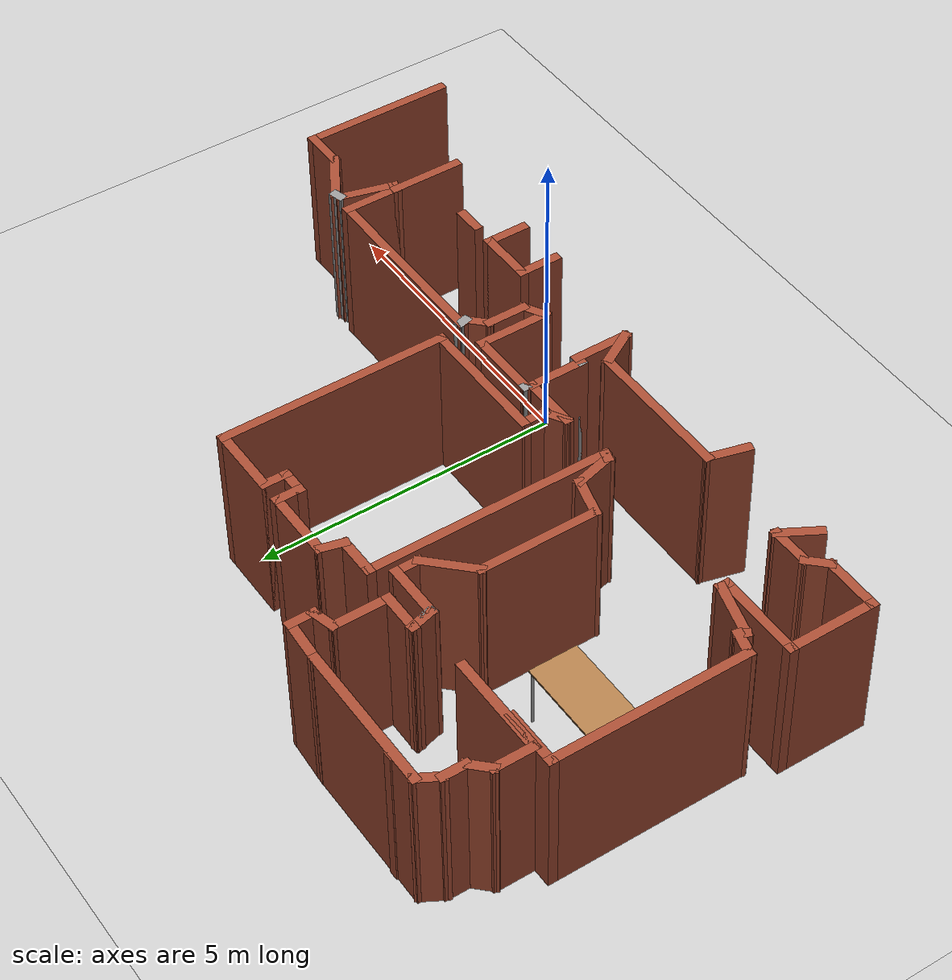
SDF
<sdf version="1.7">
 <world name="default">
  <model name="ground_plane">
   <static>1</static>
   <link name="link">
    <collision name="collision">
     <geometry><plane><normal>0 0 1</normal><size>100 100</size></plane></geometry>
     <surface>
      <contact><collide_bitmask>65535</collide_bitmask></contact>
      <friction><ode><mu>100</mu><mu2>50</mu2></ode></friction>
     </surface>
    </collision>
    <visual name="visual">
     <cast_shadows>0</cast_shadows>
     <geometry><plane><normal>0 0 1</normal><size>100 100</size></plane></geometry>
     <material>
      <script><uri>file://media/materials/scripts/gazebo.material</uri><name>Gazebo/Grey</name></script>
     </material>
    </visual>
   </link>
  </model>
  <model name="map_14">
   <pose>-1.02181 -0.3828 0 0 -0 0</pose>
   <link name="Wall_1">
    <collision name="Wall_1_Collision">
     <geometry><box><size>0.15 0.15 2.5</size></box></geometry>
     <pose>0 0 1.25 0 -0 0</pose>
    </collision>
    <visual name="Wall_1_Visual">
     <pose>0 0 1.25 0 -0 0</pose>
     <geometry><box><size>0.15 0.15 2.5</size></box></geometry>
     <material>
      <script><uri>file://media/materials/scripts/gazebo.material</uri><name>Gazebo/Bricks</name></script>
      <ambient>1 1 1 1</ambient>
     </material>
     <meta><layer>0</layer></meta>
    </visual>
    <pose>-4.77548 6.74677 0 0 -0 0</pose>
   </link>
   <link name="Wall_10">
    <collision name="Wall_10_Collision">
     <geometry><box><size>1.75 0.15 2.5</size></box></geometry>
     <pose>0 0 1.25 0 -0 0</pose>
    </collision>
    <visual name="Wall_10_Visual">
     <pose>0 0 1.25 0 -0 0</pose>
     <geometry><box><size>1.75 0.15 2.5</size></box></geometry>
     <material>
      <script><uri>file://media/materials/scripts/gazebo.material</uri><name>Gazebo/Bricks</name></script>
      <ambient>1 1 1 1</ambient>
     </material>
     <meta><layer>0</layer></meta>
    </visual>
    <pose>-4.87484 5.22304 0 0 -0 0</pose>
   </link>
   <link name="Wall_101">
    <collision name="Wall_101_Collision">
     <geometry><box><size>1.25 0.15 2.5</size></box></geometry>
     <pose>0 0 1.25 0 -0 0</pose>
    </collision>
    <visual name="Wall_101_Visual">
     <pose>0 0 1.25 0 -0 0</pose>
     <geometry><box><size>1.25 0.15 2.5</size></box></geometry>
     <material>
      <script><uri>file://media/materials/scripts/gazebo.material</uri><name>Gazebo/Bricks</name></script>
      <ambient>1 1 1 1</ambient>
     </material>
     <meta><layer>0</layer></meta>
    </visual>
    <pose>0.272904 1.65524 0 0 -0 3.14159</pose>
   </link>
   <link name="Wall_102">
    <collision name="Wall_102_Collision">
     <geometry><box><size>0.25 0.15 2.5</size></box></geometry>
     <pose>0 0 1.25 0 -0 0</pose>
    </collision>
    <visual name="Wall_102_Visual">
     <pose>0 0 1.25 0 -0 0</pose>
     <geometry><box><size>0.25 0.15 2.5</size></box></geometry>
     <material>
      <script><uri>file://media/materials/scripts/gazebo.material</uri><name>Gazebo/Bricks</name></script>
      <ambient>1 1 1 1</ambient>
     </material>
     <meta><layer>0</layer></meta>
    </visual>
    <pose>-0.290037 1.60695 0 0 -0 -1.8326</pose>
   </link>
   <link name="Wall_103">
    <collision name="Wall_103_Collision">
     <geometry><box><size>1 0.15 2.5</size></box></geometry>
     <pose>0 0 1.25 0 -0 0</pose>
    </collision>
    <visual name="Wall_103_Visual">
     <pose>0 0 1.25 0 -0 0</pose>
     <geometry><box><size>1 0.15 2.5</size></box></geometry>
     <material>
      <script><uri>file://media/materials/scripts/gazebo.material</uri><name>Gazebo/Bricks</name></script>
      <ambient>1 1 1 1</ambient>
     </material>
     <meta><layer>0</layer></meta>
    </visual>
    <pose>-0.727978 1.55865 0 0 -0 3.14159</pose>
   </link>
   <link name="Wall_104">
    <collision name="Wall_104_Collision">
     <geometry><box><size>0.5 0.15 2.5</size></box></geometry>
     <pose>0 0 1.25 0 -0 0</pose>
    </collision>
    <visual name="Wall_104_Visual">
     <pose>0 0 1.25 0 -0 0</pose>
     <geometry><box><size>0.5 0.15 2.5</size></box></geometry>
     <material>
      <script><uri>file://media/materials/scripts/gazebo.material</uri><name>Gazebo/Bricks</name></script>
      <ambient>1 1 1 1</ambient>
     </material>
     <meta><layer>0</layer></meta>
    </visual>
    <pose>-1.00142 1.64615 0 0 -0 0.523599</pose>
   </link>
   <link name="Wall_105">
    <collision name="Wall_105_Collision">
     <geometry><box><size>0.5 0.15 2.5</size></box></geometry>
     <pose>0 0 1.25 0 -0 0</pose>
    </collision>
    <visual name="Wall_105_Visual">
     <pose>0 0 1.25 0 -0 0</pose>
     <geometry><box><size>0.5 0.15 2.5</size></box></geometry>
     <material>
      <script><uri>file://media/materials/scripts/gazebo.material</uri><name>Gazebo/Bricks</name></script>
      <ambient>1 1 1 1</ambient>
     </material>
     <meta><layer>0</layer></meta>
    </visual>
    <pose>-0.849869 1.90865 0 0 -0 1.5708</pose>
   </link>
   <link name="Wall_106">
    <collision name="Wall_106_Collision">
     <geometry><box><size>2.25 0.15 2.5</size></box></geometry>
     <pose>0 0 1.25 0 -0 0</pose>
    </collision>
    <visual name="Wall_106_Visual">
     <pose>0 0 1.25 0 -0 0</pose>
     <geometry><box><size>2.25 0.15 2.5</size></box></geometry>
     <material>
      <script><uri>file://media/materials/scripts/gazebo.material</uri><name>Gazebo/Bricks</name></script>
      <ambient>1 1 1 1</ambient>
     </material>
     <meta><layer>0</layer></meta>
    </visual>
    <pose>0.200131 2.08365 0 0 -0 0</pose>
   </link>
   <link name="Wall_107">
    <collision name="Wall_107_Collision">
     <geometry><box><size>3.75 0.15 2.5</size></box></geometry>
     <pose>0 0 1.25 0 -0 0</pose>
    </collision>
    <visual name="Wall_107_Visual">
     <pose>0 0 1.25 0 -0 0</pose>
     <geometry><box><size>3.75 0.15 2.5</size></box></geometry>
     <material>
      <script><uri>file://media/materials/scripts/gazebo.material</uri><name>Gazebo/Bricks</name></script>
      <ambient>1 1 1 1</ambient>
     </material>
     <meta><layer>0</layer></meta>
    </visual>
    <pose>1.25013 3.88365 0 0 -0 1.5708</pose>
   </link>
   <link name="Wall_108">
    <collision name="Wall_108_Collision">
     <geometry><box><size>1.25 0.15 2.5</size></box></geometry>
     <pose>0 0 1.25 0 -0 0</pose>
    </collision>
    <visual name="Wall_108_Visual">
     <pose>0 0 1.25 0 -0 0</pose>
     <geometry><box><size>1.25 0.15 2.5</size></box></geometry>
     <material>
      <script><uri>file://media/materials/scripts/gazebo.material</uri><name>Gazebo/Bricks</name></script>
      <ambient>1 1 1 1</ambient>
     </material>
     <meta><layer>0</layer></meta>
    </visual>
    <pose>0.700131 5.68365 0 0 -0 3.14159</pose>
   </link>
   <link name="Wall_109">
    <collision name="Wall_109_Collision">
     <geometry><box><size>0.5 0.15 2.5</size></box></geometry>
     <pose>0 0 1.25 0 -0 0</pose>
    </collision>
    <visual name="Wall_109_Visual">
     <pose>0 0 1.25 0 -0 0</pose>
     <geometry><box><size>0.5 0.15 2.5</size></box></geometry>
     <material>
      <script><uri>file://media/materials/scripts/gazebo.material</uri><name>Gazebo/Bricks</name></script>
      <ambient>1 1 1 1</ambient>
     </material>
     <meta><layer>0</layer></meta>
    </visual>
    <pose>0.150131 5.50865 0 0 -0 -1.5708</pose>
   </link>
   <link name="Wall_110">
    <collision name="Wall_110_Collision">
     <geometry><box><size>0.5 0.15 2.5</size></box></geometry>
     <pose>0 0 1.25 0 -0 0</pose>
    </collision>
    <visual name="Wall_110_Visual">
     <pose>0 0 1.25 0 -0 0</pose>
     <geometry><box><size>0.5 0.15 2.5</size></box></geometry>
     <material>
      <script><uri>file://media/materials/scripts/gazebo.material</uri><name>Gazebo/Bricks</name></script>
      <ambient>1 1 1 1</ambient>
     </material>
     <meta><layer>0</layer></meta>
    </visual>
    <pose>-0.024869 5.33365 0 0 -0 3.14159</pose>
   </link>
   <link name="Wall_111">
    <collision name="Wall_111_Collision">
     <geometry><box><size>0.5 0.15 2.5</size></box></geometry>
     <pose>0 0 1.25 0 -0 0</pose>
    </collision>
    <visual name="Wall_111_Visual">
     <pose>0 0 1.25 0 -0 0</pose>
     <geometry><box><size>0.5 0.15 2.5</size></box></geometry>
     <material>
      <script><uri>file://media/materials/scripts/gazebo.material</uri><name>Gazebo/Bricks</name></script>
      <ambient>1 1 1 1</ambient>
     </material>
     <meta><layer>0</layer></meta>
    </visual>
    <pose>-0.199869 5.50865 0 0 -0 1.5708</pose>
   </link>
   <link name="Wall_112">
    <collision name="Wall_112_Collision">
     <geometry><box><size>1.25 0.15 2.5</size></box></geometry>
     <pose>0 0 1.25 0 -0 0</pose>
    </collision>
    <visual name="Wall_112_Visual">
     <pose>0 0 1.25 0 -0 0</pose>
     <geometry><box><size>1.25 0.15 2.5</size></box></geometry>
     <material>
      <script><uri>file://media/materials/scripts/gazebo.material</uri><name>Gazebo/Bricks</name></script>
      <ambient>1 1 1 1</ambient>
     </material>
     <meta><layer>0</layer></meta>
    </visual>
    <pose>-0.749869 5.68365 0 0 -0 3.14159</pose>
   </link>
   <link name="Wall_113">
    <collision name="Wall_113_Collision">
     <geometry><box><size>0.5 0.15 2.5</size></box></geometry>
     <pose>0 0 1.25 0 -0 0</pose>
    </collision>
    <visual name="Wall_113_Visual">
     <pose>0 0 1.25 0 -0 0</pose>
     <geometry><box><size>0.5 0.15 2.5</size></box></geometry>
     <material>
      <script><uri>file://media/materials/scripts/gazebo.material</uri><name>Gazebo/Bricks</name></script>
      <ambient>1 1 1 1</ambient>
     </material>
     <meta><layer>0</layer></meta>
    </visual>
    <pose>-1.34516 5.51461 0 0 -0 -1.8326</pose>
   </link>
   <link name="Wall_114">
    <collision name="Wall_114_Collision">
     <geometry><box><size>0.75 0.15 2.5</size></box></geometry>
     <pose>0 0 1.25 0 -0 0</pose>
    </collision>
    <visual name="Wall_114_Visual">
     <pose>0 0 1.25 0 -0 0</pose>
     <geometry><box><size>0.75 0.15 2.5</size></box></geometry>
     <material>
      <script><uri>file://media/materials/scripts/gazebo.material</uri><name>Gazebo/Bricks</name></script>
      <ambient>1 1 1 1</ambient>
     </material>
     <meta><layer>0</layer></meta>
    </visual>
    <pose>-1.69046 5.34558 0 0 -0 3.14159</pose>
   </link>
   <link name="Wall_115">
    <collision name="Wall_115_Collision">
     <geometry><box><size>4 0.15 2.5</size></box></geometry>
     <pose>0 0 1.25 0 -0 0</pose>
    </collision>
    <visual name="Wall_115_Visual">
     <pose>0 0 1.25 0 -0 0</pose>
     <geometry><box><size>4 0.15 2.5</size></box></geometry>
     <material>
      <script><uri>file://media/materials/scripts/gazebo.material</uri><name>Gazebo/Bricks</name></script>
      <ambient>1 1 1 1</ambient>
     </material>
     <meta><layer>0</layer></meta>
    </visual>
    <pose>-1.99046 3.42058 0 0 -0 -1.5708</pose>
   </link>
   <link name="Wall_116">
    <collision name="Wall_116_Collision">
     <geometry><box><size>0.25 0.15 2.5</size></box></geometry>
     <pose>0 0 1.25 0 -0 0</pose>
    </collision>
    <visual name="Wall_116_Visual">
     <pose>0 0 1.25 0 -0 0</pose>
     <geometry><box><size>0.25 0.15 2.5</size></box></geometry>
     <material>
      <script><uri>file://media/materials/scripts/gazebo.material</uri><name>Gazebo/Bricks</name></script>
      <ambient>1 1 1 1</ambient>
     </material>
     <meta><layer>0</layer></meta>
    </visual>
    <pose>-2.03875 1.50852 0 0 -0 2.87979</pose>
   </link>
   <link name="Wall_117">
    <collision name="Wall_117_Collision">
     <geometry><box><size>0.75 0.15 2.5</size></box></geometry>
     <pose>0 0 1.25 0 -0 0</pose>
    </collision>
    <visual name="Wall_117_Visual">
     <pose>0 0 1.25 0 -0 0</pose>
     <geometry><box><size>0.75 0.15 2.5</size></box></geometry>
     <material>
      <script><uri>file://media/materials/scripts/gazebo.material</uri><name>Gazebo/Bricks</name></script>
      <ambient>1 1 1 1</ambient>
     </material>
     <meta><layer>0</layer></meta>
    </visual>
    <pose>-2.16469 1.81124 0 0 -0 1.8326</pose>
   </link>
   <link name="Wall_118">
    <collision name="Wall_118_Collision">
     <geometry><box><size>0.75 0.15 2.5</size></box></geometry>
     <pose>0 0 1.25 0 -0 0</pose>
    </collision>
    <visual name="Wall_118_Visual">
     <pose>0 0 1.25 0 -0 0</pose>
     <geometry><box><size>0.75 0.15 2.5</size></box></geometry>
     <material>
      <script><uri>file://media/materials/scripts/gazebo.material</uri><name>Gazebo/Bricks</name></script>
      <ambient>1 1 1 1</ambient>
     </material>
     <meta><layer>0</layer></meta>
    </visual>
    <pose>-2.53212 2.17866 0 0 -0 2.87979</pose>
   </link>
   <link name="Wall_119">
    <collision name="Wall_119_Collision">
     <geometry><box><size>2 0.15 2.5</size></box></geometry>
     <pose>0 0 1.25 0 -0 0</pose>
    </collision>
    <visual name="Wall_119_Visual">
     <pose>0 0 1.25 0 -0 0</pose>
     <geometry><box><size>2 0.15 2.5</size></box></geometry>
     <material>
      <script><uri>file://media/materials/scripts/gazebo.material</uri><name>Gazebo/Bricks</name></script>
      <ambient>1 1 1 1</ambient>
     </material>
     <meta><layer>0</layer></meta>
    </visual>
    <pose>-2.8219 3.18131 0 0 -0 1.5708</pose>
   </link>
   <link name="Wall_12">
    <collision name="Wall_12_Collision">
     <geometry><box><size>1 0.15 2.5</size></box></geometry>
     <pose>0 0 1.25 0 -0 0</pose>
    </collision>
    <visual name="Wall_12_Visual">
     <pose>0 0 1.25 0 -0 0</pose>
     <geometry><box><size>1 0.15 2.5</size></box></geometry>
     <material>
      <script><uri>file://media/materials/scripts/gazebo.material</uri><name>Gazebo/Bricks</name></script>
      <ambient>1 1 1 1</ambient>
     </material>
     <meta><layer>0</layer></meta>
    </visual>
    <pose>-5.54789 5.17389 0 0 -0 3.14159</pose>
   </link>
   <link name="Wall_120">
    <collision name="Wall_120_Collision">
     <geometry><box><size>1 0.15 2.5</size></box></geometry>
     <pose>0 0 1.25 0 -0 0</pose>
    </collision>
    <visual name="Wall_120_Visual">
     <pose>0 0 1.25 0 -0 0</pose>
     <geometry><box><size>1 0.15 2.5</size></box></geometry>
     <material>
      <script><uri>file://media/materials/scripts/gazebo.material</uri><name>Gazebo/Bricks</name></script>
      <ambient>1 1 1 1</ambient>
     </material>
     <meta><layer>0</layer></meta>
    </visual>
    <pose>-2.52137 4.40683 0 0 -0 0.785398</pose>
   </link>
   <link name="Wall_121">
    <collision name="Wall_121_Collision">
     <geometry><box><size>0.5 0.15 2.5</size></box></geometry>
     <pose>0 0 1.25 0 -0 0</pose>
    </collision>
    <visual name="Wall_121_Visual">
     <pose>0 0 1.25 0 -0 0</pose>
     <geometry><box><size>0.5 0.15 2.5</size></box></geometry>
     <material>
      <script><uri>file://media/materials/scripts/gazebo.material</uri><name>Gazebo/Bricks</name></script>
      <ambient>1 1 1 1</ambient>
     </material>
     <meta><layer>0</layer></meta>
    </visual>
    <pose>-2.22085 4.88235 0 0 -0 1.5708</pose>
   </link>
   <link name="Wall_123">
    <collision name="Wall_123_Collision">
     <geometry><box><size>0.25 0.15 2.5</size></box></geometry>
     <pose>0 0 1.25 0 -0 0</pose>
    </collision>
    <visual name="Wall_123_Visual">
     <pose>0 0 1.25 0 -0 0</pose>
     <geometry><box><size>0.25 0.15 2.5</size></box></geometry>
     <material>
      <script><uri>file://media/materials/scripts/gazebo.material</uri><name>Gazebo/Grey</name></script>
      <ambient>1 1 1 1</ambient>
     </material>
     <meta><layer>0</layer></meta>
    </visual>
    <pose>-3.08379 5.10564 0 0 -0 1.8326</pose>
   </link>
   <link name="Wall_126">
    <collision name="Wall_126_Collision">
     <geometry><box><size>0.25 0.15 2.5</size></box></geometry>
     <pose>0 0 1.25 0 -0 0</pose>
    </collision>
    <visual name="Wall_126_Visual">
     <pose>0 0 1.25 0 -0 0</pose>
     <geometry><box><size>0.25 0.15 2.5</size></box></geometry>
     <material>
      <script><uri>file://media/materials/scripts/gazebo.material</uri><name>Gazebo/Grey</name></script>
      <ambient>1 1 1 1</ambient>
     </material>
     <meta><layer>0</layer></meta>
    </visual>
    <pose>-3.08379 5.10564 0 0 -0 1.8326</pose>
   </link>
   <link name="Wall_129">
    <collision name="Wall_129_Collision">
     <geometry><box><size>1 0.15 2.5</size></box></geometry>
     <pose>0 0 1.25 0 -0 0</pose>
    </collision>
    <visual name="Wall_129_Visual">
     <pose>0 0 1.25 0 -0 0</pose>
     <geometry><box><size>1 0.15 2.5</size></box></geometry>
     <material>
      <script><uri>file://media/materials/scripts/gazebo.material</uri><name>Gazebo/Bricks</name></script>
      <ambient>1 1 1 1</ambient>
     </material>
     <meta><layer>0</layer></meta>
    </visual>
    <pose>-2.64585 5.05735 0 0 -0 3.14159</pose>
   </link>
   <link name="Wall_13">
    <collision name="Wall_13_Collision">
     <geometry><box><size>3.25 0.15 2.5</size></box></geometry>
     <pose>0 0 1.25 0 -0 0</pose>
    </collision>
    <visual name="Wall_13_Visual">
     <pose>0 0 1.25 0 -0 0</pose>
     <geometry><box><size>3.25 0.15 2.5</size></box></geometry>
     <material>
      <script><uri>file://media/materials/scripts/gazebo.material</uri><name>Gazebo/Bricks</name></script>
      <ambient>1 1 1 1</ambient>
     </material>
     <meta><layer>0</layer></meta>
    </visual>
    <pose>-5.97289 3.62389 0 0 -0 -1.5708</pose>
   </link>
   <link name="Wall_130">
    <collision name="Wall_130_Collision">
     <geometry><box><size>0.5 0.15 2.5</size></box></geometry>
     <pose>0 0 1.25 0 -0 0</pose>
    </collision>
    <visual name="Wall_130_Visual">
     <pose>0 0 1.25 0 -0 0</pose>
     <geometry><box><size>0.5 0.15 2.5</size></box></geometry>
     <material>
      <script><uri>file://media/materials/scripts/gazebo.material</uri><name>Gazebo/Bricks</name></script>
      <ambient>1 1 1 1</ambient>
     </material>
     <meta><layer>0</layer></meta>
    </visual>
    <pose>-3.11615 5.22638 0 0 -0 1.8326</pose>
   </link>
   <link name="Wall_133">
    <collision name="Wall_133_Collision">
     <geometry><box><size>0.75 0.15 2.5</size></box></geometry>
     <pose>0 0 1.25 0 -0 0</pose>
    </collision>
    <visual name="Wall_133_Visual">
     <pose>0 0 1.25 0 -0 0</pose>
     <geometry><box><size>0.75 0.15 2.5</size></box></geometry>
     <material>
      <script><uri>file://media/materials/scripts/gazebo.material</uri><name>Gazebo/Bricks</name></script>
      <ambient>1 1 1 1</ambient>
     </material>
     <meta><layer>0</layer></meta>
    </visual>
    <pose>-2.86144 5.39542 0 0 -0 0</pose>
   </link>
   <link name="Wall_134">
    <collision name="Wall_134_Collision">
     <geometry><box><size>1 0.15 2.5</size></box></geometry>
     <pose>0 0 1.25 0 -0 0</pose>
    </collision>
    <visual name="Wall_134_Visual">
     <pose>0 0 1.25 0 -0 0</pose>
     <geometry><box><size>1 0.15 2.5</size></box></geometry>
     <material>
      <script><uri>file://media/materials/scripts/gazebo.material</uri><name>Gazebo/Bricks</name></script>
      <ambient>1 1 1 1</ambient>
     </material>
     <meta><layer>0</layer></meta>
    </visual>
    <pose>-2.56144 5.82042 0 0 -0 1.5708</pose>
   </link>
   <link name="Wall_135">
    <collision name="Wall_135_Collision">
     <geometry><box><size>0.5 0.15 2.5</size></box></geometry>
     <pose>0 0 1.25 0 -0 0</pose>
    </collision>
    <visual name="Wall_135_Visual">
     <pose>0 0 1.25 0 -0 0</pose>
     <geometry><box><size>0.5 0.15 2.5</size></box></geometry>
     <material>
      <script><uri>file://media/materials/scripts/gazebo.material</uri><name>Gazebo/Bricks</name></script>
      <ambient>1 1 1 1</ambient>
     </material>
     <meta><layer>0</layer></meta>
    </visual>
    <pose>-2.3924 6.29071 0 0 -0 0.261799</pose>
   </link>
   <link name="Wall_136">
    <collision name="Wall_136_Collision">
     <geometry><box><size>0.5 0.15 2.5</size></box></geometry>
     <pose>0 0 1.25 0 -0 0</pose>
    </collision>
    <visual name="Wall_136_Visual">
     <pose>0 0 1.25 0 -0 0</pose>
     <geometry><box><size>0.5 0.15 2.5</size></box></geometry>
     <material>
      <script><uri>file://media/materials/scripts/gazebo.material</uri><name>Gazebo/Bricks</name></script>
      <ambient>1 1 1 1</ambient>
     </material>
     <meta><layer>0</layer></meta>
    </visual>
    <pose>-2.22337 6.51101 0 0 -0 1.5708</pose>
   </link>
   <link name="Wall_137">
    <collision name="Wall_137_Collision">
     <geometry><box><size>0.830025 0.15 2.5</size></box></geometry>
     <pose>0 0 1.25 0 -0 0</pose>
    </collision>
    <visual name="Wall_137_Visual">
     <pose>0 0 1.25 0 -0 0</pose>
     <geometry><box><size>0.830025 0.15 2.5</size></box></geometry>
     <material>
      <script><uri>file://media/materials/scripts/gazebo.material</uri><name>Gazebo/Bricks</name></script>
      <ambient>1 1 1 1</ambient>
     </material>
     <meta><layer>0</layer></meta>
    </visual>
    <pose>-2.56286 6.70482 0 0 -0 3.08623</pose>
   </link>
   <link name="Wall_14">
    <collision name="Wall_14_Collision">
     <geometry><box><size>0.5 0.15 2.5</size></box></geometry>
     <pose>0 0 1.25 0 -0 0</pose>
    </collision>
    <visual name="Wall_14_Visual">
     <pose>0 0 1.25 0 -0 0</pose>
     <geometry><box><size>0.5 0.15 2.5</size></box></geometry>
     <material>
      <script><uri>file://media/materials/scripts/gazebo.material</uri><name>Gazebo/Bricks</name></script>
      <ambient>1 1 1 1</ambient>
     </material>
     <meta><layer>0</layer></meta>
    </visual>
    <pose>-5.80385 2.0286 0 0 -0 -0.261799</pose>
   </link>
   <link name="Wall_140">
    <collision name="Wall_140_Collision">
     <geometry><box><size>1.25 0.15 2.5</size></box></geometry>
     <pose>0 0 1.25 0 -0 0</pose>
    </collision>
    <visual name="Wall_140_Visual">
     <pose>0 0 1.25 0 -0 0</pose>
     <geometry><box><size>1.25 0.15 2.5</size></box></geometry>
     <material>
      <script><uri>file://media/materials/scripts/gazebo.material</uri><name>Gazebo/Bricks</name></script>
      <ambient>1 1 1 1</ambient>
     </material>
     <meta><layer>0</layer></meta>
    </visual>
    <pose>4.44762 0.274324 0 0 -0 -1.5708</pose>
   </link>
   <link name="Wall_142">
    <collision name="Wall_142_Collision">
     <geometry><box><size>0.75 0.15 2.5</size></box></geometry>
     <pose>0 0 1.25 0 -0 0</pose>
    </collision>
    <visual name="Wall_142_Visual">
     <pose>0 0 1.25 0 -0 0</pose>
     <geometry><box><size>0.75 0.15 2.5</size></box></geometry>
     <material>
      <script><uri>file://media/materials/scripts/gazebo.material</uri><name>Gazebo/Bricks</name></script>
      <ambient>1 1 1 1</ambient>
     </material>
     <meta><layer>0</layer></meta>
    </visual>
    <pose>1.77003 0.016461 0 0 -0 -1.5708</pose>
   </link>
   <link name="Wall_144">
    <collision name="Wall_144_Collision">
     <geometry><box><size>0.75 0.15 2.5</size></box></geometry>
     <pose>0 0 1.25 0 -0 0</pose>
    </collision>
    <visual name="Wall_144_Visual">
     <pose>0 0 1.25 0 -0 0</pose>
     <geometry><box><size>0.75 0.15 2.5</size></box></geometry>
     <material>
      <script><uri>file://media/materials/scripts/gazebo.material</uri><name>Gazebo/Bricks</name></script>
      <ambient>1 1 1 1</ambient>
     </material>
     <meta><layer>0</layer></meta>
    </visual>
    <pose>2.62003 0.016461 0 0 -0 1.5708</pose>
   </link>
   <link name="Wall_145">
    <collision name="Wall_145_Collision">
     <geometry><box><size>1 0.15 2.5</size></box></geometry>
     <pose>0 0 1.25 0 -0 0</pose>
    </collision>
    <visual name="Wall_145_Visual">
     <pose>0 0 1.25 0 -0 0</pose>
     <geometry><box><size>1 0.15 2.5</size></box></geometry>
     <material>
      <script><uri>file://media/materials/scripts/gazebo.material</uri><name>Gazebo/Bricks</name></script>
      <ambient>1 1 1 1</ambient>
     </material>
     <meta><layer>0</layer></meta>
    </visual>
    <pose>2.19503 0.316462 0 0 -0 3.14159</pose>
   </link>
   <link name="Wall_15">
    <collision name="Wall_15_Collision">
     <geometry><box><size>0.25 0.15 2.5</size></box></geometry>
     <pose>0 0 1.25 0 -0 0</pose>
    </collision>
    <visual name="Wall_15_Visual">
     <pose>0 0 1.25 0 -0 0</pose>
     <geometry><box><size>0.25 0.15 2.5</size></box></geometry>
     <material>
      <script><uri>file://media/materials/scripts/gazebo.material</uri><name>Gazebo/Bricks</name></script>
      <ambient>1 1 1 1</ambient>
     </material>
     <meta><layer>0</layer></meta>
    </visual>
    <pose>-5.65981 1.94 0 0 -0 -2.0944</pose>
   </link>
   <link name="Wall_151">
    <collision name="Wall_151_Collision">
     <geometry><box><size>0.5 0.15 2.5</size></box></geometry>
     <pose>0 0 1.25 0 -0 0</pose>
    </collision>
    <visual name="Wall_151_Visual">
     <pose>0 0 1.25 0 -0 0</pose>
     <geometry><box><size>0.5 0.15 2.5</size></box></geometry>
     <material>
      <script><uri>file://media/materials/scripts/gazebo.material</uri><name>Gazebo/Bricks</name></script>
      <ambient>1 1 1 1</ambient>
     </material>
     <meta><layer>0</layer></meta>
    </visual>
    <pose>3.19629 0.295153 0 0 -0 3.14159</pose>
   </link>
   <link name="Wall_153">
    <collision name="Wall_153_Collision">
     <geometry><box><size>1 0.15 2.5</size></box></geometry>
     <pose>0 0 1.25 0 -0 0</pose>
    </collision>
    <visual name="Wall_153_Visual">
     <pose>0 0 1.25 0 -0 0</pose>
     <geometry><box><size>1 0.15 2.5</size></box></geometry>
     <material>
      <script><uri>file://media/materials/scripts/gazebo.material</uri><name>Gazebo/Bricks</name></script>
      <ambient>1 1 1 1</ambient>
     </material>
     <meta><layer>0</layer></meta>
    </visual>
    <pose>-0.302978 1.13365 0 0 -0 -1.5708</pose>
   </link>
   <link name="Wall_154">
    <collision name="Wall_154_Collision">
     <geometry><box><size>0.25 0.15 2.5</size></box></geometry>
     <pose>0 0 1.25 0 -0 0</pose>
    </collision>
    <visual name="Wall_154_Visual">
     <pose>0 0 1.25 0 -0 0</pose>
     <geometry><box><size>0.25 0.15 2.5</size></box></geometry>
     <material>
      <script><uri>file://media/materials/scripts/gazebo.material</uri><name>Gazebo/Grey</name></script>
      <ambient>1 1 1 1</ambient>
     </material>
     <meta><layer>0</layer></meta>
    </visual>
    <pose>-0.252978 0.708652 0 0 -0 0</pose>
   </link>
   <link name="Wall_155">
    <collision name="Wall_155_Collision">
     <geometry><box><size>1 0.15 2.5</size></box></geometry>
     <pose>0 0 1.25 0 -0 0</pose>
    </collision>
    <visual name="Wall_155_Visual">
     <pose>0 0 1.25 0 -0 0</pose>
     <geometry><box><size>1 0.15 2.5</size></box></geometry>
     <material>
      <script><uri>file://media/materials/scripts/gazebo.material</uri><name>Gazebo/Bricks</name></script>
      <ambient>1 1 1 1</ambient>
     </material>
     <meta><layer>0</layer></meta>
    </visual>
    <pose>-0.202978 0.283651 0 0 -0 -1.5708</pose>
   </link>
   <link name="Wall_157">
    <collision name="Wall_157_Collision">
     <geometry><box><size>0.75 0.15 2.5</size></box></geometry>
     <pose>0 0 1.25 0 -0 0</pose>
    </collision>
    <visual name="Wall_157_Visual">
     <pose>0 0 1.25 0 -0 0</pose>
     <geometry><box><size>0.75 0.15 2.5</size></box></geometry>
     <material>
      <script><uri>file://media/materials/scripts/gazebo.material</uri><name>Gazebo/Bricks</name></script>
      <ambient>1 1 1 1</ambient>
     </material>
     <meta><layer>0</layer></meta>
    </visual>
    <pose>-0.352978 0.118459 0 0 -0 2.0944</pose>
   </link>
   <link name="Wall_158">
    <collision name="Wall_158_Collision">
     <geometry><box><size>2.5 0.15 2.5</size></box></geometry>
     <pose>0 0 1.25 0 -0 0</pose>
    </collision>
    <visual name="Wall_158_Visual">
     <pose>0 0 1.25 0 -0 0</pose>
     <geometry><box><size>2.5 0.15 2.5</size></box></geometry>
     <material>
      <script><uri>file://media/materials/scripts/gazebo.material</uri><name>Gazebo/Bricks</name></script>
      <ambient>1 1 1 1</ambient>
     </material>
     <meta><layer>0</layer></meta>
    </visual>
    <pose>-1.67798 0.378267 0 0 -0 3.14159</pose>
   </link>
   <link name="Wall_159">
    <collision name="Wall_159_Collision">
     <geometry><box><size>0.75 0.15 2.5</size></box></geometry>
     <pose>0 0 1.25 0 -0 0</pose>
    </collision>
    <visual name="Wall_159_Visual">
     <pose>0 0 1.25 0 -0 0</pose>
     <geometry><box><size>0.75 0.15 2.5</size></box></geometry>
     <material>
      <script><uri>file://media/materials/scripts/gazebo.material</uri><name>Gazebo/Bricks</name></script>
      <ambient>1 1 1 1</ambient>
     </material>
     <meta><layer>0</layer></meta>
    </visual>
    <pose>-2.93062 0.088489 0 0 -0 -1.8326</pose>
   </link>
   <link name="Wall_16">
    <collision name="Wall_16_Collision">
     <geometry><box><size>1 0.15 2.5</size></box></geometry>
     <pose>0 0 1.25 0 -0 0</pose>
    </collision>
    <visual name="Wall_16_Visual">
     <pose>0 0 1.25 0 -0 0</pose>
     <geometry><box><size>1 0.15 2.5</size></box></geometry>
     <material>
      <script><uri>file://media/materials/scripts/gazebo.material</uri><name>Gazebo/Bricks</name></script>
      <ambient>1 1 1 1</ambient>
     </material>
     <meta><layer>0</layer></meta>
    </visual>
    <pose>-5.2743 1.7867 0 0 -0 -0.261799</pose>
   </link>
   <link name="Wall_17">
    <collision name="Wall_17_Collision">
     <geometry><box><size>0.25 0.15 2.5</size></box></geometry>
     <pose>0 0 1.25 0 -0 0</pose>
    </collision>
    <visual name="Wall_17_Visual">
     <pose>0 0 1.25 0 -0 0</pose>
     <geometry><box><size>0.25 0.15 2.5</size></box></geometry>
     <material>
      <script><uri>file://media/materials/scripts/gazebo.material</uri><name>Gazebo/Bricks</name></script>
      <ambient>1 1 1 1</ambient>
     </material>
     <meta><layer>0</layer></meta>
    </visual>
    <pose>-4.86378 1.6267 0 0 -0 -1.5708</pose>
   </link>
   <link name="Wall_18">
    <collision name="Wall_18_Collision">
     <geometry><box><size>1.5 0.15 2.5</size></box></geometry>
     <pose>0 0 1.25 0 -0 0</pose>
    </collision>
    <visual name="Wall_18_Visual">
     <pose>0 0 1.25 0 -0 0</pose>
     <geometry><box><size>1.5 0.15 2.5</size></box></geometry>
     <material>
      <script><uri>file://media/materials/scripts/gazebo.material</uri><name>Gazebo/Bricks</name></script>
      <ambient>1 1 1 1</ambient>
     </material>
     <meta><layer>0</layer></meta>
    </visual>
    <pose>-5.53878 1.5767 0 0 -0 3.14159</pose>
   </link>
   <link name="Wall_19">
    <collision name="Wall_19_Collision">
     <geometry><box><size>1.5 0.15 2.5</size></box></geometry>
     <pose>0 0 1.25 0 -0 0</pose>
    </collision>
    <visual name="Wall_19_Visual">
     <pose>0 0 1.25 0 -0 0</pose>
     <geometry><box><size>1.5 0.15 2.5</size></box></geometry>
     <material>
      <script><uri>file://media/materials/scripts/gazebo.material</uri><name>Gazebo/Bricks</name></script>
      <ambient>1 1 1 1</ambient>
     </material>
     <meta><layer>0</layer></meta>
    </visual>
    <pose>-6.21378 0.901704 0 0 -0 -1.5708</pose>
   </link>
   <link name="Wall_20">
    <collision name="Wall_20_Collision">
     <geometry><box><size>1 0.15 2.5</size></box></geometry>
     <pose>0 0 1.25 0 -0 0</pose>
    </collision>
    <visual name="Wall_20_Visual">
     <pose>0 0 1.25 0 -0 0</pose>
     <geometry><box><size>1 0.15 2.5</size></box></geometry>
     <material>
      <script><uri>file://media/materials/scripts/gazebo.material</uri><name>Gazebo/Bricks</name></script>
      <ambient>1 1 1 1</ambient>
     </material>
     <meta><layer>0</layer></meta>
    </visual>
    <pose>-5.78878 0.226704 0 0 -0 0</pose>
   </link>
   <link name="Wall_21">
    <collision name="Wall_21_Collision">
     <geometry><box><size>0.5 0.15 2.5</size></box></geometry>
     <pose>0 0 1.25 0 -0 0</pose>
    </collision>
    <visual name="Wall_21_Visual">
     <pose>0 0 1.25 0 -0 0</pose>
     <geometry><box><size>0.5 0.15 2.5</size></box></geometry>
     <material>
      <script><uri>file://media/materials/scripts/gazebo.material</uri><name>Gazebo/Bricks</name></script>
      <ambient>1 1 1 1</ambient>
     </material>
     <meta><layer>0</layer></meta>
    </visual>
    <pose>-5.24003 0.350447 0 0 -0 0.785398</pose>
   </link>
   <link name="Wall_22">
    <collision name="Wall_22_Collision">
     <geometry><box><size>0.75 0.15 2.5</size></box></geometry>
     <pose>0 0 1.25 0 -0 0</pose>
    </collision>
    <visual name="Wall_22_Visual">
     <pose>0 0 1.25 0 -0 0</pose>
     <geometry><box><size>0.75 0.15 2.5</size></box></geometry>
     <material>
      <script><uri>file://media/materials/scripts/gazebo.material</uri><name>Gazebo/Bricks</name></script>
      <ambient>1 1 1 1</ambient>
     </material>
     <meta><layer>0</layer></meta>
    </visual>
    <pose>-4.81629 0.474191 0 0 -0 0</pose>
   </link>
   <link name="Wall_23">
    <collision name="Wall_23_Collision">
     <geometry><box><size>0.75 0.15 2.5</size></box></geometry>
     <pose>0 0 1.25 0 -0 0</pose>
    </collision>
    <visual name="Wall_23_Visual">
     <pose>0 0 1.25 0 -0 0</pose>
     <geometry><box><size>0.75 0.15 2.5</size></box></geometry>
     <material>
      <script><uri>file://media/materials/scripts/gazebo.material</uri><name>Gazebo/Bricks</name></script>
      <ambient>1 1 1 1</ambient>
     </material>
     <meta><layer>0</layer></meta>
    </visual>
    <pose>-4.66629 0.214383 0 0 -0 -2.0944</pose>
   </link>
   <link name="Wall_3">
    <collision name="Wall_3_Collision">
     <geometry><box><size>2.5 0.15 2.5</size></box></geometry>
     <pose>0 0 1.25 0 -0 0</pose>
    </collision>
    <visual name="Wall_3_Visual">
     <pose>0 0 1.25 0 -0 0</pose>
     <geometry><box><size>2.5 0.15 2.5</size></box></geometry>
     <material>
      <script><uri>file://media/materials/scripts/gazebo.material</uri><name>Gazebo/Bricks</name></script>
      <ambient>1 1 1 1</ambient>
     </material>
     <meta><layer>0</layer></meta>
    </visual>
    <pose>-4.07735 6.72364 0 0 -0 3.14159</pose>
   </link>
   <link name="Wall_4">
    <collision name="Wall_4_Collision">
     <geometry><box><size>0.5 0.15 2.5</size></box></geometry>
     <pose>0 0 1.25 0 -0 0</pose>
    </collision>
    <visual name="Wall_4_Visual">
     <pose>0 0 1.25 0 -0 0</pose>
     <geometry><box><size>0.5 0.15 2.5</size></box></geometry>
     <material>
      <script><uri>file://media/materials/scripts/gazebo.material</uri><name>Gazebo/Bricks</name></script>
      <ambient>1 1 1 1</ambient>
     </material>
     <meta><layer>0</layer></meta>
    </visual>
    <pose>-5.33985 6.57209 0 0 -0 -2.0944</pose>
   </link>
   <link name="Wall_5">
    <collision name="Wall_5_Collision">
     <geometry><box><size>0.5 0.15 2.5</size></box></geometry>
     <pose>0 0 1.25 0 -0 0</pose>
    </collision>
    <visual name="Wall_5_Visual">
     <pose>0 0 1.25 0 -0 0</pose>
     <geometry><box><size>0.5 0.15 2.5</size></box></geometry>
     <material>
      <script><uri>file://media/materials/scripts/gazebo.material</uri><name>Gazebo/Bricks</name></script>
      <ambient>1 1 1 1</ambient>
     </material>
     <meta><layer>0</layer></meta>
    </visual>
    <pose>-5.42735 6.24553 0 0 -0 -1.5708</pose>
   </link>
   <link name="Wall_6">
    <collision name="Wall_6_Collision">
     <geometry><box><size>0.5 0.15 2.5</size></box></geometry>
     <pose>0 0 1.25 0 -0 0</pose>
    </collision>
    <visual name="Wall_6_Visual">
     <pose>0 0 1.25 0 -0 0</pose>
     <geometry><box><size>0.5 0.15 2.5</size></box></geometry>
     <material>
      <script><uri>file://media/materials/scripts/gazebo.material</uri><name>Gazebo/Bricks</name></script>
      <ambient>1 1 1 1</ambient>
     </material>
     <meta><layer>0</layer></meta>
    </visual>
    <pose>-5.55109 5.94679 0 0 -0 -2.35619</pose>
   </link>
   <link name="Wall_82">
    <collision name="Wall_82_Collision">
     <geometry><box><size>2.5 0.15 2.5</size></box></geometry>
     <pose>0 0 1.25 0 -0 0</pose>
    </collision>
    <visual name="Wall_82_Visual">
     <pose>0 0 1.25 0 -0 0</pose>
     <geometry><box><size>2.5 0.15 2.5</size></box></geometry>
     <material>
      <script><uri>file://media/materials/scripts/gazebo.material</uri><name>Gazebo/Bricks</name></script>
      <ambient>1 1 1 1</ambient>
     </material>
     <meta><layer>0</layer></meta>
    </visual>
    <pose>6.19692 0.045361 0 0 -0 1.5708</pose>
   </link>
   <link name="Wall_83">
    <collision name="Wall_83_Collision">
     <geometry><box><size>0.75 0.15 2.5</size></box></geometry>
     <pose>0 0 1.25 0 -0 0</pose>
    </collision>
    <visual name="Wall_83_Visual">
     <pose>0 0 1.25 0 -0 0</pose>
     <geometry><box><size>0.75 0.15 2.5</size></box></geometry>
     <material>
      <script><uri>file://media/materials/scripts/gazebo.material</uri><name>Gazebo/Bricks</name></script>
      <ambient>1 1 1 1</ambient>
     </material>
     <meta><layer>0</layer></meta>
    </visual>
    <pose>5.89692 1.22036 0 0 -0 3.14159</pose>
   </link>
   <link name="Wall_84">
    <collision name="Wall_84_Collision">
     <geometry><box><size>1 0.15 2.5</size></box></geometry>
     <pose>0 0 1.25 0 -0 0</pose>
    </collision>
    <visual name="Wall_84_Visual">
     <pose>0 0 1.25 0 -0 0</pose>
     <geometry><box><size>1 0.15 2.5</size></box></geometry>
     <material>
      <script><uri>file://media/materials/scripts/gazebo.material</uri><name>Gazebo/Bricks</name></script>
      <ambient>1 1 1 1</ambient>
     </material>
     <meta><layer>0</layer></meta>
    </visual>
    <pose>5.22886 1.43286 0 0 -0 2.61799</pose>
   </link>
   <link name="Wall_85">
    <collision name="Wall_85_Collision">
     <geometry><box><size>0.25 0.15 2.5</size></box></geometry>
     <pose>0 0 1.25 0 -0 0</pose>
    </collision>
    <visual name="Wall_85_Visual">
     <pose>0 0 1.25 0 -0 0</pose>
     <geometry><box><size>0.25 0.15 2.5</size></box></geometry>
     <material>
      <script><uri>file://media/materials/scripts/gazebo.material</uri><name>Gazebo/Grey</name></script>
      <ambient>1 1 1 1</ambient>
     </material>
     <meta><layer>0</layer></meta>
    </visual>
    <pose>4.8125 1.63242 0 0 -0 -2.87979</pose>
   </link>
   <link name="Wall_86">
    <collision name="Wall_86_Collision">
     <geometry><box><size>1 0.15 2.5</size></box></geometry>
     <pose>0 0 1.25 0 -0 0</pose>
    </collision>
    <visual name="Wall_86_Visual">
     <pose>0 0 1.25 0 -0 0</pose>
     <geometry><box><size>1 0.15 2.5</size></box></geometry>
     <material>
      <script><uri>file://media/materials/scripts/gazebo.material</uri><name>Gazebo/Bricks</name></script>
      <ambient>1 1 1 1</ambient>
     </material>
     <meta><layer>0</layer></meta>
    </visual>
    <pose>4.65421 1.20896 0 0 -0 -1.8326</pose>
   </link>
   <link name="Wall_87">
    <collision name="Wall_87_Collision">
     <geometry><box><size>0.25 0.15 2.5</size></box></geometry>
     <pose>0 0 1.25 0 -0 0</pose>
    </collision>
    <visual name="Wall_87_Visual">
     <pose>0 0 1.25 0 -0 0</pose>
     <geometry><box><size>0.25 0.15 2.5</size></box></geometry>
     <material>
      <script><uri>file://media/materials/scripts/gazebo.material</uri><name>Gazebo/Bricks</name></script>
      <ambient>1 1 1 1</ambient>
     </material>
     <meta><layer>0</layer></meta>
    </visual>
    <pose>4.49592 0.811383 0 0 -0 2.87979</pose>
   </link>
   <link name="Wall_88">
    <collision name="Wall_88_Collision">
     <geometry><box><size>1 0.15 2.5</size></box></geometry>
     <pose>0 0 1.25 0 -0 0</pose>
    </collision>
    <visual name="Wall_88_Visual">
     <pose>0 0 1.25 0 -0 0</pose>
     <geometry><box><size>1 0.15 2.5</size></box></geometry>
     <material>
      <script><uri>file://media/materials/scripts/gazebo.material</uri><name>Gazebo/Bricks</name></script>
      <ambient>1 1 1 1</ambient>
     </material>
     <meta><layer>0</layer></meta>
    </visual>
    <pose>4.44762 1.24932 0 0 -0 1.5708</pose>
   </link>
   <link name="Wall_89">
    <collision name="Wall_89_Collision">
     <geometry><box><size>3.25 0.15 2.5</size></box></geometry>
     <pose>0 0 1.25 0 -0 0</pose>
    </collision>
    <visual name="Wall_89_Visual">
     <pose>0 0 1.25 0 -0 0</pose>
     <geometry><box><size>3.25 0.15 2.5</size></box></geometry>
     <material>
      <script><uri>file://media/materials/scripts/gazebo.material</uri><name>Gazebo/Bricks</name></script>
      <ambient>1 1 1 1</ambient>
     </material>
     <meta><layer>0</layer></meta>
    </visual>
    <pose>2.89762 1.67432 0 0 -0 3.14159</pose>
   </link>
   <link name="Wall_9">
    <collision name="Wall_9_Collision">
     <geometry><box><size>0.75 0.15 2.5</size></box></geometry>
     <pose>0 0 1.25 0 -0 0</pose>
    </collision>
    <visual name="Wall_9_Visual">
     <pose>0 0 1.25 0 -0 0</pose>
     <geometry><box><size>0.75 0.15 2.5</size></box></geometry>
     <material>
      <script><uri>file://media/materials/scripts/gazebo.material</uri><name>Gazebo/Bricks</name></script>
      <ambient>1 1 1 1</ambient>
     </material>
     <meta><layer>0</layer></meta>
    </visual>
    <pose>-5.67484 5.52304 0 0 -0 -1.5708</pose>
   </link>
   <link name="Wall_90">
    <collision name="Wall_90_Collision">
     <geometry><box><size>0.25 0.15 2.5</size></box></geometry>
     <pose>0 0 1.25 0 -0 0</pose>
    </collision>
    <visual name="Wall_90_Visual">
     <pose>0 0 1.25 0 -0 0</pose>
     <geometry><box><size>0.25 0.15 2.5</size></box></geometry>
     <material>
      <script><uri>file://media/materials/scripts/gazebo.material</uri><name>Gazebo/Grey</name></script>
      <ambient>1 1 1 1</ambient>
     </material>
     <meta><layer>0</layer></meta>
    </visual>
    <pose>1.36056 1.62603 0 0 -0 -1.309</pose>
   </link>
   <link name="Wall_91">
    <collision name="Wall_91_Collision">
     <geometry><box><size>0.5 0.15 2.5</size></box></geometry>
     <pose>0 0 1.25 0 -0 0</pose>
    </collision>
    <visual name="Wall_91_Visual">
     <pose>0 0 1.25 0 -0 0</pose>
     <geometry><box><size>0.5 0.15 2.5</size></box></geometry>
     <material>
      <script><uri>file://media/materials/scripts/gazebo.material</uri><name>Gazebo/Bricks</name></script>
      <ambient>1 1 1 1</ambient>
     </material>
     <meta><layer>0</layer></meta>
    </visual>
    <pose>1.24976 1.45399 0 0 -0 -2.35619</pose>
   </link>
   <link name="Wall_92">
    <collision name="Wall_92_Collision">
     <geometry><box><size>0.75 0.15 2.5</size></box></geometry>
     <pose>0 0 1.25 0 -0 0</pose>
    </collision>
    <visual name="Wall_92_Visual">
     <pose>0 0 1.25 0 -0 0</pose>
     <geometry><box><size>0.75 0.15 2.5</size></box></geometry>
     <material>
      <script><uri>file://media/materials/scripts/gazebo.material</uri><name>Gazebo/Bricks</name></script>
      <ambient>1 1 1 1</ambient>
     </material>
     <meta><layer>0</layer></meta>
    </visual>
    <pose>1.12601 1.03024 0 0 -0 -1.5708</pose>
   </link>
   <link name="Wall_93">
    <collision name="Wall_93_Collision">
     <geometry><box><size>0.5 0.15 2.5</size></box></geometry>
     <pose>0 0 1.25 0 -0 0</pose>
    </collision>
    <visual name="Wall_93_Visual">
     <pose>0 0 1.25 0 -0 0</pose>
     <geometry><box><size>0.5 0.15 2.5</size></box></geometry>
     <material>
      <script><uri>file://media/materials/scripts/gazebo.material</uri><name>Gazebo/Bricks</name></script>
      <ambient>1 1 1 1</ambient>
     </material>
     <meta><layer>0</layer></meta>
    </visual>
    <pose>0.974459 0.642744 0 0 -0 -2.61799</pose>
   </link>
   <link name="Wall_94">
    <collision name="Wall_94_Collision">
     <geometry><box><size>1.25 0.15 2.5</size></box></geometry>
     <pose>0 0 1.25 0 -0 0</pose>
    </collision>
    <visual name="Wall_94_Visual">
     <pose>0 0 1.25 0 -0 0</pose>
     <geometry><box><size>1.25 0.15 2.5</size></box></geometry>
     <material>
      <script><uri>file://media/materials/scripts/gazebo.material</uri><name>Gazebo/Bricks</name></script>
      <ambient>1 1 1 1</ambient>
     </material>
     <meta><layer>0</layer></meta>
    </visual>
    <pose>0.822904 1.10524 0 0 -0 1.5708</pose>
   </link>
   <link name="Wall_96">
    <collision name="Wall_96_Collision">
     <geometry><box><size>0.15 0.15 2.5</size></box></geometry>
     <pose>0 0 1.25 0 -0 0</pose>
    </collision>
    <visual name="Wall_96_Visual">
     <pose>0 0 1.25 0 -0 0</pose>
     <geometry><box><size>0.15 0.15 2.5</size></box></geometry>
     <material>
      <script><uri>file://media/materials/scripts/gazebo.material</uri><name>Gazebo/Grey</name></script>
      <ambient>1 1 1 1</ambient>
     </material>
     <meta><layer>0</layer></meta>
    </visual>
    <pose>-0.277096 1.65524 0 0 -0 0</pose>
   </link>
   <link name="Wall_99">
    <collision name="Wall_99_Collision">
     <geometry><box><size>0.15 0.15 2.5</size></box></geometry>
     <pose>0 0 1.25 0 -0 0</pose>
    </collision>
    <visual name="Wall_99_Visual">
     <pose>0 0 1.25 0 -0 0</pose>
     <geometry><box><size>0.15 0.15 2.5</size></box></geometry>
     <material>
      <script><uri>file://media/materials/scripts/gazebo.material</uri><name>Gazebo/Grey</name></script>
      <ambient>1 1 1 1</ambient>
     </material>
     <meta><layer>0</layer></meta>
    </visual>
    <pose>-0.277096 1.65524 0 0 -0 0</pose>
   </link>
   <static>1</static>
  </model>
  <model name="table">
   <static>1</static>
   <link name="link">
    <collision name="surface">
     <pose>0 0 1 0 -0 0</pose>
     <geometry><box><size>1.5 0.8 0.03</size></box></geometry>
     <surface><friction><ode><mu>0.6</mu><mu2>0.6</mu2></ode></friction></surface>
    </collision>
    <visual name="visual1">
     <pose>0 0 1 0 -0 0</pose>
     <geometry><box><size>1.5 0.8 0.03</size></box></geometry>
     <material>
      <script><uri>file://media/materials/scripts/gazebo.material</uri><name>Gazebo/Wood</name></script>
     </material>
    </visual>
    <collision name="front_left_leg">
     <pose>0.68 0.38 0.5 0 -0 0</pose>
     <geometry><cylinder><radius>0.02</radius><length>1</length></cylinder></geometry>
    </collision>
    <visual name="front_left_leg">
     <pose>0.68 0.38 0.5 0 -0 0</pose>
     <geometry><cylinder><radius>0.02</radius><length>1</length></cylinder></geometry>
     <material>
      <script><uri>file://media/materials/scripts/gazebo.material</uri><name>Gazebo/Grey</name></script>
     </material>
    </visual>
    <collision name="front_right_leg">
     <pose>0.68 -0.38 0.5 0 -0 0</pose>
     <geometry><cylinder><radius>0.02</radius><length>1</length></cylinder></geometry>
    </collision>
    <visual name="front_right_leg">
     <pose>0.68 -0.38 0.5 0 -0 0</pose>
     <geometry><cylinder><radius>0.02</radius><length>1</length></cylinder></geometry>
     <material>
      <script><uri>file://media/materials/scripts/gazebo.material</uri><name>Gazebo/Grey</name></script>
     </material>
    </visual>
    <collision name="back_right_leg">
     <pose>-0.68 -0.38 0.5 0 -0 0</pose>
     <geometry><cylinder><radius>0.02</radius><length>1</length></cylinder></geometry>
    </collision>
    <visual name="back_right_leg">
     <pose>-0.68 -0.38 0.5 0 -0 0</pose>
     <geometry><cylinder><radius>0.02</radius><length>1</length></cylinder></geometry>
     <material>
      <script><uri>file://media/materials/scripts/gazebo.material</uri><name>Gazebo/Grey</name></script>
     </material>
    </visual>
    <collision name="back_left_leg">
     <pose>-0.68 0.38 0.5 0 -0 0</pose>
     <geometry><cylinder><radius>0.02</radius><length>1</length></cylinder></geometry>
    </collision>
    <visual name="back_left_leg">
     <pose>-0.68 0.38 0.5 0 -0 0</pose>
     <geometry><cylinder><radius>0.02</radius><length>1</length></cylinder></geometry>
     <material>
      <script><uri>file://media/materials/scripts/gazebo.material</uri><name>Gazebo/Grey</name></script>
     </material>
    </visual>
   </link>
   <pose>-5.36212 3.09114 0 0 -0 0</pose>
  </model>
 </world>
</sdf>
